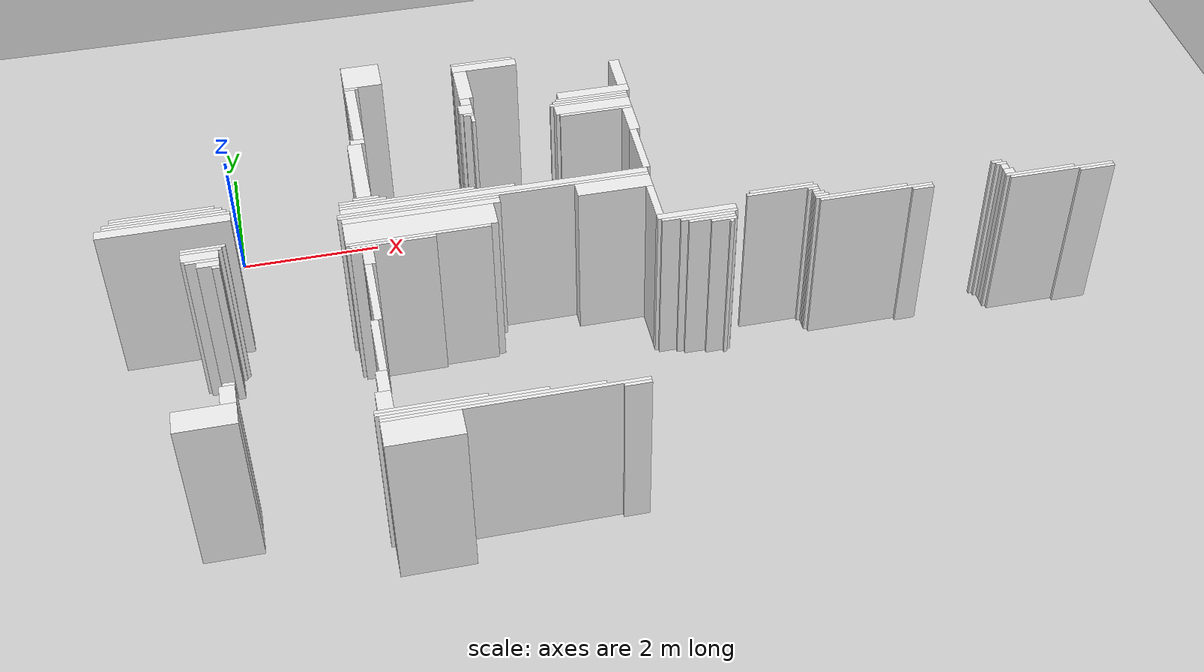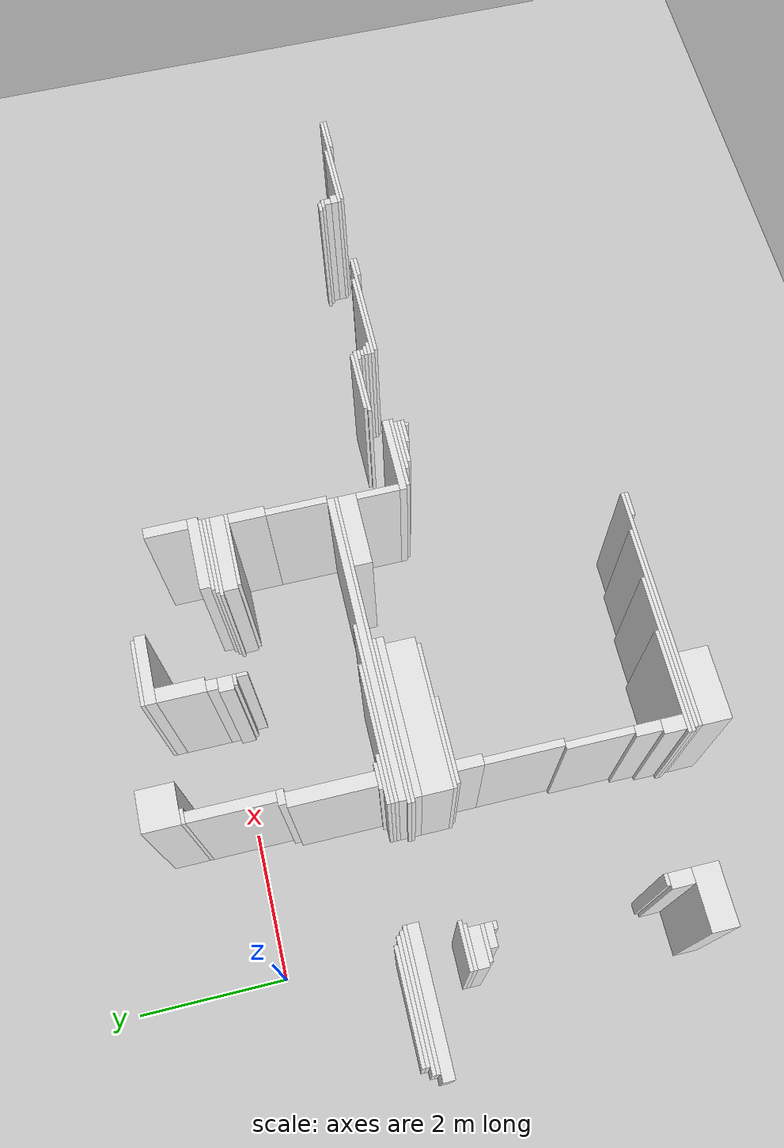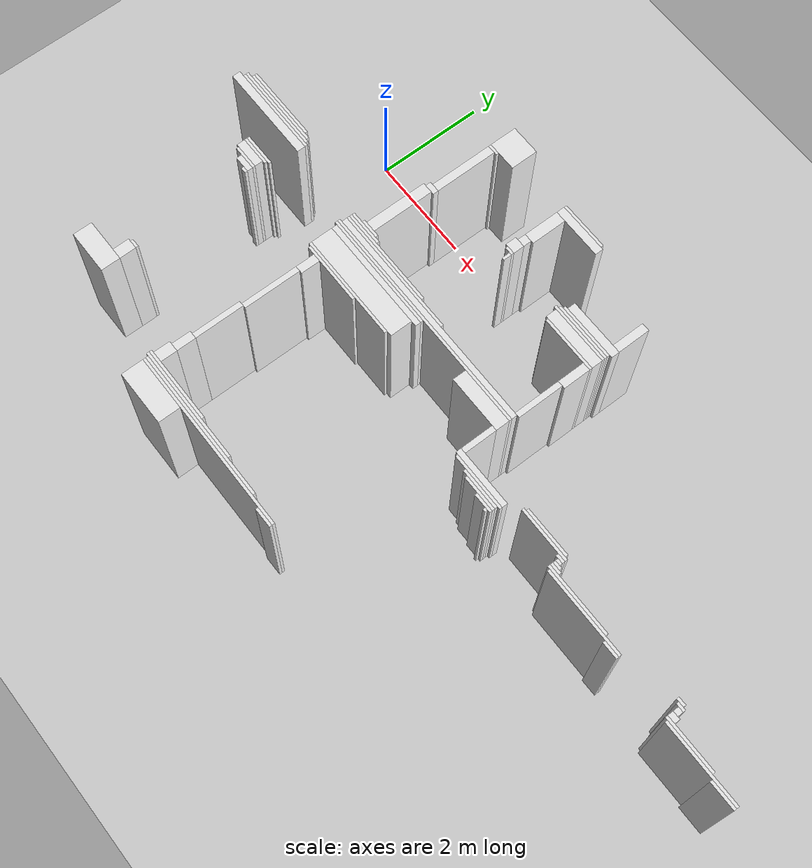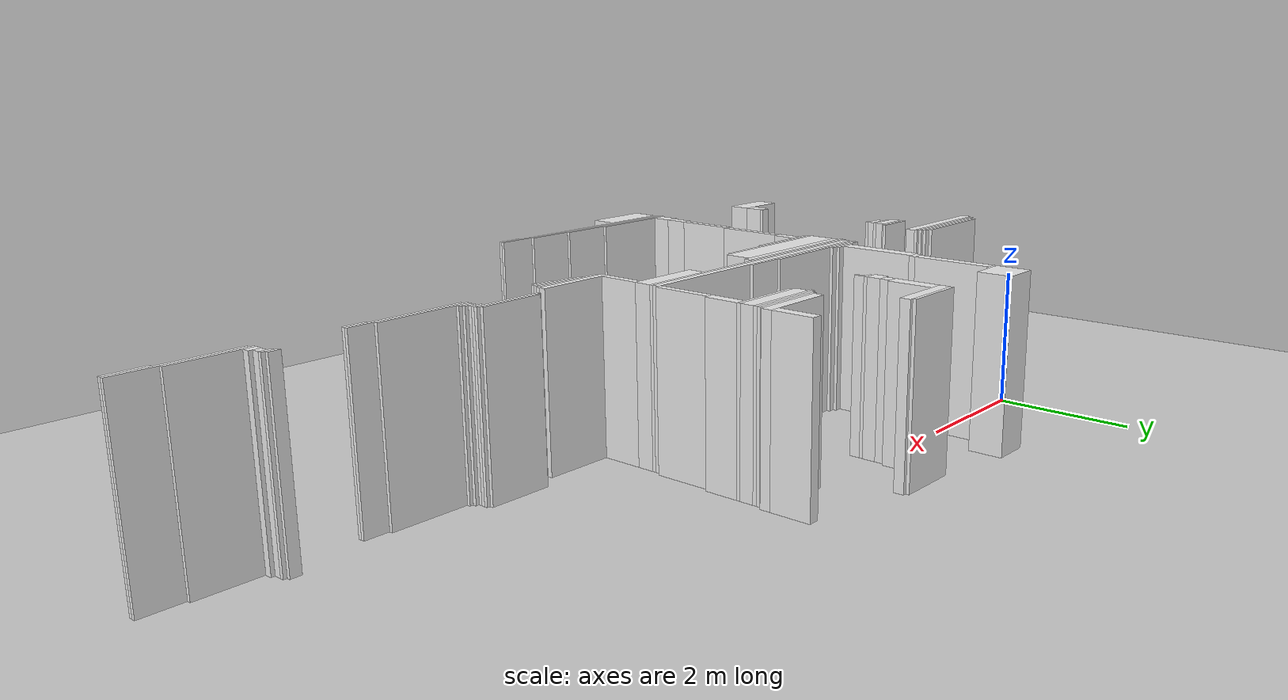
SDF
<sdf version="1.7">
 <world name="occupancy_map_world">
  <model name="ground_plane">
   <static>true</static>
   <link name="link">
    <collision name="collision">
     <geometry><plane><normal>0 0 1</normal><size>32.46 49.62000000000001</size></plane></geometry>
    </collision>
    <visual name="visual">
     <geometry><plane><normal>0 0 1</normal><size>32.46 49.62000000000001</size></plane></geometry>
     <material>
      <script><uri>file://media/materials/scripts/gazebo.material</uri><name>Gazebo/Grey</name></script>
     </material>
    </visual>
   </link>
  </model>
  <model name="wall_77">
   <static>true</static>
   <pose>10.575000000000003 -2.974999999999998 1.25 0 0 0.0</pose>
   <link name="link">
    <collision name="collision"><geometry><box><size>0.1 0.1 2.5</size></box></geometry></collision>
    <visual name="visual">
     <geometry><box><size>0.1 0.1 2.5</size></box></geometry>
     <material>
      <script><uri>file://media/materials/scripts/gazebo.material</uri><name>Gazebo/White</name></script>
     </material>
    </visual>
   </link>
  </model>
  <model name="wall_415">
   <static>true</static>
   <pose>3.5000000000000036 0.05000000000000071 1.25 0 0 0.0</pose>
   <link name="link">
    <collision name="collision">
     <geometry><box><size>0.15000000000000002 0.15000000000000002 2.5</size></box></geometry>
    </collision>
    <visual name="visual">
     <geometry><box><size>0.15000000000000002 0.15000000000000002 2.5</size></box></geometry>
     <material>
      <script><uri>file://media/materials/scripts/gazebo.material</uri><name>Gazebo/White</name></script>
     </material>
    </visual>
   </link>
  </model>
  <model name="wall_416">
   <static>true</static>
   <pose>3.5000000000000036 -0.25 1.25 0 0 0.0</pose>
   <link name="link">
    <collision name="collision">
     <geometry><box><size>0.15000000000000002 0.05 2.5</size></box></geometry>
    </collision>
    <visual name="visual">
     <geometry><box><size>0.15000000000000002 0.05 2.5</size></box></geometry>
     <material>
      <script><uri>file://media/materials/scripts/gazebo.material</uri><name>Gazebo/White</name></script>
     </material>
    </visual>
   </link>
  </model>
  <model name="wall_418">
   <static>true</static>
   <pose>2.1000000000000014 0.9750000000000014 1.25 0 0 0.0</pose>
   <link name="link">
    <collision name="collision"><geometry><box><size>0.55 0.5 2.5</size></box></geometry></collision>
    <visual name="visual">
     <geometry><box><size>0.55 0.5 2.5</size></box></geometry>
     <material>
      <script><uri>file://media/materials/scripts/gazebo.material</uri><name>Gazebo/White</name></script>
     </material>
    </visual>
   </link>
  </model>
  <model name="wall_424">
   <static>true</static>
   <pose>3.8750000000000036 0.9500000000000028 1.25 0 0 0.0</pose>
   <link name="link">
    <collision name="collision"><geometry><box><size>0.9 0.05 2.5</size></box></geometry></collision>
    <visual name="visual">
     <geometry><box><size>0.9 0.05 2.5</size></box></geometry>
     <material>
      <script><uri>file://media/materials/scripts/gazebo.material</uri><name>Gazebo/White</name></script>
     </material>
    </visual>
   </link>
  </model>
  <model name="wall_426">
   <static>true</static>
   <pose>3.900000000000002 0.8500000000000014 1.25 0 0 0.0</pose>
   <link name="link">
    <collision name="collision">
     <geometry><box><size>0.9500000000000001 0.15000000000000002 2.5</size></box></geometry>
    </collision>
    <visual name="visual">
     <geometry><box><size>0.9500000000000001 0.15000000000000002 2.5</size></box></geometry>
     <material>
      <script><uri>file://media/materials/scripts/gazebo.material</uri><name>Gazebo/White</name></script>
     </material>
    </visual>
   </link>
  </model>
  <model name="wall_430">
   <static>true</static>
   <pose>3.525000000000002 0.45000000000000284 1.25 0 0 0.0</pose>
   <link name="link">
    <collision name="collision"><geometry><box><size>0.2 0.65 2.5</size></box></geometry></collision>
    <visual name="visual">
     <geometry><box><size>0.2 0.65 2.5</size></box></geometry>
     <material>
      <script><uri>file://media/materials/scripts/gazebo.material</uri><name>Gazebo/White</name></script>
     </material>
    </visual>
   </link>
  </model>
  <model name="wall_432">
   <static>true</static>
   <pose>1.9250000000000043 0.7000000000000028 1.25 0 0 0.0</pose>
   <link name="link">
    <collision name="collision"><geometry><box><size>0.2 0.05 2.5</size></box></geometry></collision>
    <visual name="visual">
     <geometry><box><size>0.2 0.05 2.5</size></box></geometry>
     <material>
      <script><uri>file://media/materials/scripts/gazebo.material</uri><name>Gazebo/White</name></script>
     </material>
    </visual>
   </link>
  </model>
  <model name="wall_433">
   <static>true</static>
   <pose>1.9000000000000021 0.10000000000000142 1.25 0 0 0.0</pose>
   <link name="link">
    <collision name="collision">
     <geometry><box><size>0.15000000000000002 1.1500000000000001 2.5</size></box></geometry>
    </collision>
    <visual name="visual">
     <geometry><box><size>0.15000000000000002 1.1500000000000001 2.5</size></box></geometry>
     <material>
      <script><uri>file://media/materials/scripts/gazebo.material</uri><name>Gazebo/White</name></script>
     </material>
    </visual>
   </link>
  </model>
  <model name="wall_434">
   <static>true</static>
   <pose>5.800000000000004 0.27500000000000213 1.25 0 0 0.0</pose>
   <link name="link">
    <collision name="collision">
     <geometry><box><size>0.15000000000000002 0.6000000000000001 2.5</size></box></geometry>
    </collision>
    <visual name="visual">
     <geometry><box><size>0.15000000000000002 0.6000000000000001 2.5</size></box></geometry>
     <material>
      <script><uri>file://media/materials/scripts/gazebo.material</uri><name>Gazebo/White</name></script>
     </material>
    </visual>
   </link>
  </model>
  <model name="wall_437">
   <static>true</static>
   <pose>3.4750000000000014 -0.125 1.25 0 0 0.0</pose>
   <link name="link">
    <collision name="collision"><geometry><box><size>0.2 0.2 2.5</size></box></geometry></collision>
    <visual name="visual">
     <geometry><box><size>0.2 0.2 2.5</size></box></geometry>
     <material>
      <script><uri>file://media/materials/scripts/gazebo.material</uri><name>Gazebo/White</name></script>
     </material>
    </visual>
   </link>
  </model>
  <model name="wall_438">
   <static>true</static>
   <pose>5.350000000000001 -0.09999999999999787 1.25 0 0 0.0</pose>
   <link name="link">
    <collision name="collision">
     <geometry><box><size>1.05 0.15000000000000002 2.5</size></box></geometry>
    </collision>
    <visual name="visual">
     <geometry><box><size>1.05 0.15000000000000002 2.5</size></box></geometry>
     <material>
      <script><uri>file://media/materials/scripts/gazebo.material</uri><name>Gazebo/White</name></script>
     </material>
    </visual>
   </link>
  </model>
  <model name="wall_439">
   <static>true</static>
   <pose>5.300000000000004 -0.1999999999999993 1.25 0 0 0.0</pose>
   <link name="link">
    <collision name="collision"><geometry><box><size>1.05 0.05 2.5</size></box></geometry></collision>
    <visual name="visual">
     <geometry><box><size>1.05 0.05 2.5</size></box></geometry>
     <material>
      <script><uri>file://media/materials/scripts/gazebo.material</uri><name>Gazebo/White</name></script>
     </material>
    </visual>
   </link>
  </model>
  <model name="wall_440">
   <static>true</static>
   <pose>5.300000000000004 -0.5499999999999972 1.25 0 0 0.0</pose>
   <link name="link">
    <collision name="collision"><geometry><box><size>1.05 0.05 2.5</size></box></geometry></collision>
    <visual name="visual">
     <geometry><box><size>1.05 0.05 2.5</size></box></geometry>
     <material>
      <script><uri>file://media/materials/scripts/gazebo.material</uri><name>Gazebo/White</name></script>
     </material>
    </visual>
   </link>
  </model>
  <model name="wall_441">
   <static>true</static>
   <pose>5.275000000000002 -0.25 1.25 0 0 0.0</pose>
   <link name="link">
    <collision name="collision"><geometry><box><size>1.1 0.05 2.5</size></box></geometry></collision>
    <visual name="visual">
     <geometry><box><size>1.1 0.05 2.5</size></box></geometry>
     <material>
      <script><uri>file://media/materials/scripts/gazebo.material</uri><name>Gazebo/White</name></script>
     </material>
    </visual>
   </link>
  </model>
  <model name="wall_442">
   <static>true</static>
   <pose>5.275000000000002 -0.42499999999999716 1.25 0 0 0.0</pose>
   <link name="link">
    <collision name="collision"><geometry><box><size>1.1 0.2 2.5</size></box></geometry></collision>
    <visual name="visual">
     <geometry><box><size>1.1 0.2 2.5</size></box></geometry>
     <material>
      <script><uri>file://media/materials/scripts/gazebo.material</uri><name>Gazebo/White</name></script>
     </material>
    </visual>
   </link>
  </model>
  <model name="wall_444">
   <static>true</static>
   <pose>3.5500000000000043 -0.34999999999999787 1.25 0 0 0.0</pose>
   <link name="link">
    <collision name="collision">
     <geometry><box><size>0.05 0.15000000000000002 2.5</size></box></geometry>
    </collision>
    <visual name="visual">
     <geometry><box><size>0.05 0.15000000000000002 2.5</size></box></geometry>
     <material>
      <script><uri>file://media/materials/scripts/gazebo.material</uri><name>Gazebo/White</name></script>
     </material>
    </visual>
   </link>
  </model>
  <model name="wall_445">
   <static>true</static>
   <pose>5.2500000000000036 -0.29999999999999716 1.25 0 0 0.0</pose>
   <link name="link">
    <collision name="collision">
     <geometry><box><size>1.1500000000000001 0.05 2.5</size></box></geometry>
    </collision>
    <visual name="visual">
     <geometry><box><size>1.1500000000000001 0.05 2.5</size></box></geometry>
     <material>
      <script><uri>file://media/materials/scripts/gazebo.material</uri><name>Gazebo/White</name></script>
     </material>
    </visual>
   </link>
  </model>
  <model name="wall_450">
   <static>true</static>
   <pose>1.8750000000000036 -0.5249999999999986 1.25 0 0 0.0</pose>
   <link name="link">
    <collision name="collision"><geometry><box><size>0.2 0.1 2.5</size></box></geometry></collision>
    <visual name="visual">
     <geometry><box><size>0.2 0.1 2.5</size></box></geometry>
     <material>
      <script><uri>file://media/materials/scripts/gazebo.material</uri><name>Gazebo/White</name></script>
     </material>
    </visual>
   </link>
  </model>
  <model name="wall_451">
   <static>true</static>
   <pose>1.8250000000000028 -1.1499999999999986 1.25 0 0 0.0</pose>
   <link name="link">
    <collision name="collision">
     <geometry><box><size>0.2 1.1500000000000001 2.5</size></box></geometry>
    </collision>
    <visual name="visual">
     <geometry><box><size>0.2 1.1500000000000001 2.5</size></box></geometry>
     <material>
      <script><uri>file://media/materials/scripts/gazebo.material</uri><name>Gazebo/White</name></script>
     </material>
    </visual>
   </link>
  </model>
  <model name="wall_452">
   <static>true</static>
   <pose>5.7500000000000036 -0.8249999999999993 1.25 0 0 0.0</pose>
   <link name="link">
    <collision name="collision">
     <geometry><box><size>0.15000000000000002 0.5 2.5</size></box></geometry>
    </collision>
    <visual name="visual">
     <geometry><box><size>0.15000000000000002 0.5 2.5</size></box></geometry>
     <material>
      <script><uri>file://media/materials/scripts/gazebo.material</uri><name>Gazebo/White</name></script>
     </material>
    </visual>
   </link>
  </model>
  <model name="wall_455">
   <static>true</static>
   <pose>5.725000000000001 -1.5 1.25 0 0 0.0</pose>
   <link name="link">
    <collision name="collision">
     <geometry><box><size>0.1 0.8500000000000001 2.5</size></box></geometry>
    </collision>
    <visual name="visual">
     <geometry><box><size>0.1 0.8500000000000001 2.5</size></box></geometry>
     <material>
      <script><uri>file://media/materials/scripts/gazebo.material</uri><name>Gazebo/White</name></script>
     </material>
    </visual>
   </link>
  </model>
  <model name="wall_458">
   <static>true</static>
   <pose>-0.8749999999999964 -1.5 1.25 0 0 0.0</pose>
   <link name="link">
    <collision name="collision">
     <geometry><box><size>1.4000000000000001 0.05 2.5</size></box></geometry>
    </collision>
    <visual name="visual">
     <geometry><box><size>1.4000000000000001 0.05 2.5</size></box></geometry>
     <material>
      <script><uri>file://media/materials/scripts/gazebo.material</uri><name>Gazebo/White</name></script>
     </material>
    </visual>
   </link>
  </model>
  <model name="wall_459">
   <static>true</static>
   <pose>-0.8249999999999993 -1.5499999999999972 1.25 0 0 0.0</pose>
   <link name="link">
    <collision name="collision"><geometry><box><size>1.5 0.05 2.5</size></box></geometry></collision>
    <visual name="visual">
     <geometry><box><size>1.5 0.05 2.5</size></box></geometry>
     <material>
      <script><uri>file://media/materials/scripts/gazebo.material</uri><name>Gazebo/White</name></script>
     </material>
    </visual>
   </link>
  </model>
  <model name="wall_460">
   <static>true</static>
   <pose>-0.8499999999999979 -1.5999999999999979 1.25 0 0 0.0</pose>
   <link name="link">
    <collision name="collision">
     <geometry><box><size>1.6500000000000001 0.05 2.5</size></box></geometry>
    </collision>
    <visual name="visual">
     <geometry><box><size>1.6500000000000001 0.05 2.5</size></box></geometry>
     <material>
      <script><uri>file://media/materials/scripts/gazebo.material</uri><name>Gazebo/White</name></script>
     </material>
    </visual>
   </link>
  </model>
  <model name="wall_461">
   <static>true</static>
   <pose>-0.8249999999999993 -1.6499999999999986 1.25 0 0 0.0</pose>
   <link name="link">
    <collision name="collision">
     <geometry><box><size>1.7000000000000002 0.05 2.5</size></box></geometry>
    </collision>
    <visual name="visual">
     <geometry><box><size>1.7000000000000002 0.05 2.5</size></box></geometry>
     <material>
      <script><uri>file://media/materials/scripts/gazebo.material</uri><name>Gazebo/White</name></script>
     </material>
    </visual>
   </link>
  </model>
  <model name="wall_462">
   <static>true</static>
   <pose>-0.8749999999999964 -1.75 1.25 0 0 0.0</pose>
   <link name="link">
    <collision name="collision">
     <geometry><box><size>1.8 0.15000000000000002 2.5</size></box></geometry>
    </collision>
    <visual name="visual">
     <geometry><box><size>1.8 0.15000000000000002 2.5</size></box></geometry>
     <material>
      <script><uri>file://media/materials/scripts/gazebo.material</uri><name>Gazebo/White</name></script>
     </material>
    </visual>
   </link>
  </model>
  <model name="wall_463">
   <static>true</static>
   <pose>1.8500000000000014 -1.75 1.25 0 0 0.0</pose>
   <link name="link">
    <collision name="collision">
     <geometry><box><size>0.35000000000000003 0.05 2.5</size></box></geometry>
    </collision>
    <visual name="visual">
     <geometry><box><size>0.35000000000000003 0.05 2.5</size></box></geometry>
     <material>
      <script><uri>file://media/materials/scripts/gazebo.material</uri><name>Gazebo/White</name></script>
     </material>
    </visual>
   </link>
  </model>
  <model name="wall_464">
   <static>true</static>
   <pose>1.8000000000000043 -1.7999999999999972 1.25 0 0 0.0</pose>
   <link name="link">
    <collision name="collision"><geometry><box><size>0.65 0.05 2.5</size></box></geometry></collision>
    <visual name="visual">
     <geometry><box><size>0.65 0.05 2.5</size></box></geometry>
     <material>
      <script><uri>file://media/materials/scripts/gazebo.material</uri><name>Gazebo/White</name></script>
     </material>
    </visual>
   </link>
  </model>
  <model name="wall_466">
   <static>true</static>
   <pose>2.400000000000002 -1.8499999999999979 1.25 0 0 0.0</pose>
   <link name="link">
    <collision name="collision"><geometry><box><size>1.85 0.05 2.5</size></box></geometry></collision>
    <visual name="visual">
     <geometry><box><size>1.85 0.05 2.5</size></box></geometry>
     <material>
      <script><uri>file://media/materials/scripts/gazebo.material</uri><name>Gazebo/White</name></script>
     </material>
    </visual>
   </link>
  </model>
  <model name="wall_467">
   <static>true</static>
   <pose>2.6750000000000043 -1.8999999999999986 1.25 0 0 0.0</pose>
   <link name="link">
    <collision name="collision">
     <geometry><box><size>2.4000000000000004 0.05 2.5</size></box></geometry>
    </collision>
    <visual name="visual">
     <geometry><box><size>2.4000000000000004 0.05 2.5</size></box></geometry>
     <material>
      <script><uri>file://media/materials/scripts/gazebo.material</uri><name>Gazebo/White</name></script>
     </material>
    </visual>
   </link>
  </model>
  <model name="wall_468">
   <static>true</static>
   <pose>3.6000000000000014 -1.9749999999999979 1.25 0 0 0.0</pose>
   <link name="link">
    <collision name="collision"><geometry><box><size>4.25 0.1 2.5</size></box></geometry></collision>
    <visual name="visual">
     <geometry><box><size>4.25 0.1 2.5</size></box></geometry>
     <material>
      <script><uri>file://media/materials/scripts/gazebo.material</uri><name>Gazebo/White</name></script>
     </material>
    </visual>
   </link>
  </model>
  <model name="wall_469">
   <static>true</static>
   <pose>3.575000000000003 -2.0500000000000007 1.25 0 0 0.0</pose>
   <link name="link">
    <collision name="collision"><geometry><box><size>4.3 0.05 2.5</size></box></geometry></collision>
    <visual name="visual">
     <geometry><box><size>4.3 0.05 2.5</size></box></geometry>
     <material>
      <script><uri>file://media/materials/scripts/gazebo.material</uri><name>Gazebo/White</name></script>
     </material>
    </visual>
   </link>
  </model>
  <model name="wall_471">
   <static>true</static>
   <pose>2.525000000000002 -2.099999999999998 1.25 0 0 0.0</pose>
   <link name="link">
    <collision name="collision"><geometry><box><size>2.2 0.05 2.5</size></box></geometry></collision>
    <visual name="visual">
     <geometry><box><size>2.2 0.05 2.5</size></box></geometry>
     <material>
      <script><uri>file://media/materials/scripts/gazebo.material</uri><name>Gazebo/White</name></script>
     </material>
    </visual>
   </link>
  </model>
  <model name="wall_472">
   <static>true</static>
   <pose>5.200000000000003 -2.1999999999999993 1.25 0 0 0.0</pose>
   <link name="link">
    <collision name="collision"><geometry><box><size>1.05 0.25 2.5</size></box></geometry></collision>
    <visual name="visual">
     <geometry><box><size>1.05 0.25 2.5</size></box></geometry>
     <material>
      <script><uri>file://media/materials/scripts/gazebo.material</uri><name>Gazebo/White</name></script>
     </material>
    </visual>
   </link>
  </model>
  <model name="wall_474">
   <static>true</static>
   <pose>2.5500000000000043 -2.1750000000000007 1.25 0 0 0.0</pose>
   <link name="link">
    <collision name="collision"><geometry><box><size>2.15 0.1 2.5</size></box></geometry></collision>
    <visual name="visual">
     <geometry><box><size>2.15 0.1 2.5</size></box></geometry>
     <material>
      <script><uri>file://media/materials/scripts/gazebo.material</uri><name>Gazebo/White</name></script>
     </material>
    </visual>
   </link>
  </model>
  <model name="wall_475">
   <static>true</static>
   <pose>2.5500000000000043 -5.75 1.25 0 0 0.0</pose>
   <link name="link">
    <collision name="collision"><geometry><box><size>2.15 0.05 2.5</size></box></geometry></collision>
    <visual name="visual">
     <geometry><box><size>2.15 0.05 2.5</size></box></geometry>
     <material>
      <script><uri>file://media/materials/scripts/gazebo.material</uri><name>Gazebo/White</name></script>
     </material>
    </visual>
   </link>
  </model>
  <model name="wall_479">
   <static>true</static>
   <pose>2.5000000000000036 -2.4250000000000007 1.25 0 0 0.0</pose>
   <link name="link">
    <collision name="collision">
     <geometry><box><size>2.0500000000000003 0.4 2.5</size></box></geometry>
    </collision>
    <visual name="visual">
     <geometry><box><size>2.0500000000000003 0.4 2.5</size></box></geometry>
     <material>
      <script><uri>file://media/materials/scripts/gazebo.material</uri><name>Gazebo/White</name></script>
     </material>
    </visual>
   </link>
  </model>
  <model name="wall_484">
   <static>true</static>
   <pose>-0.37499999999999645 -2.3000000000000007 1.25 0 0 0.0</pose>
   <link name="link">
    <collision name="collision">
     <geometry><box><size>0.6000000000000001 0.05 2.5</size></box></geometry>
    </collision>
    <visual name="visual">
     <geometry><box><size>0.6000000000000001 0.05 2.5</size></box></geometry>
     <material>
      <script><uri>file://media/materials/scripts/gazebo.material</uri><name>Gazebo/White</name></script>
     </material>
    </visual>
   </link>
  </model>
  <model name="wall_486">
   <static>true</static>
   <pose>-0.3999999999999986 -2.349999999999998 1.25 0 0 0.0</pose>
   <link name="link">
    <collision name="collision"><geometry><box><size>0.55 0.05 2.5</size></box></geometry></collision>
    <visual name="visual">
     <geometry><box><size>0.55 0.05 2.5</size></box></geometry>
     <material>
      <script><uri>file://media/materials/scripts/gazebo.material</uri><name>Gazebo/White</name></script>
     </material>
    </visual>
   </link>
  </model>
  <model name="wall_488">
   <static>true</static>
   <pose>5.675000000000004 -2.625 1.25 0 0 0.0</pose>
   <link name="link">
    <collision name="collision">
     <geometry><box><size>0.1 0.6000000000000001 2.5</size></box></geometry>
    </collision>
    <visual name="visual">
     <geometry><box><size>0.1 0.6000000000000001 2.5</size></box></geometry>
     <material>
      <script><uri>file://media/materials/scripts/gazebo.material</uri><name>Gazebo/White</name></script>
     </material>
    </visual>
   </link>
  </model>
  <model name="wall_489">
   <static>true</static>
   <pose>-0.42499999999999716 -2.4499999999999993 1.25 0 0 0.0</pose>
   <link name="link">
    <collision name="collision">
     <geometry><box><size>0.5 0.15000000000000002 2.5</size></box></geometry>
    </collision>
    <visual name="visual">
     <geometry><box><size>0.5 0.15000000000000002 2.5</size></box></geometry>
     <material>
      <script><uri>file://media/materials/scripts/gazebo.material</uri><name>Gazebo/White</name></script>
     </material>
    </visual>
   </link>
  </model>
  <model name="wall_492">
   <static>true</static>
   <pose>-0.3999999999999986 -2.5500000000000007 1.25 0 0 0.0</pose>
   <link name="link">
    <collision name="collision"><geometry><box><size>0.45 0.05 2.5</size></box></geometry></collision>
    <visual name="visual">
     <geometry><box><size>0.45 0.05 2.5</size></box></geometry>
     <material>
      <script><uri>file://media/materials/scripts/gazebo.material</uri><name>Gazebo/White</name></script>
     </material>
    </visual>
   </link>
  </model>
  <model name="wall_494">
   <static>true</static>
   <pose>-0.3249999999999993 -2.625 1.25 0 0 0.0</pose>
   <link name="link">
    <collision name="collision">
     <geometry><box><size>0.30000000000000004 0.1 2.5</size></box></geometry>
    </collision>
    <visual name="visual">
     <geometry><box><size>0.30000000000000004 0.1 2.5</size></box></geometry>
     <material>
      <script><uri>file://media/materials/scripts/gazebo.material</uri><name>Gazebo/White</name></script>
     </material>
    </visual>
   </link>
  </model>
  <model name="wall_495">
   <static>true</static>
   <pose>2.450000000000003 -2.6499999999999986 1.25 0 0 0.0</pose>
   <link name="link">
    <collision name="collision">
     <geometry><box><size>1.9500000000000002 0.05 2.5</size></box></geometry>
    </collision>
    <visual name="visual">
     <geometry><box><size>1.9500000000000002 0.05 2.5</size></box></geometry>
     <material>
      <script><uri>file://media/materials/scripts/gazebo.material</uri><name>Gazebo/White</name></script>
     </material>
    </visual>
   </link>
  </model>
  <model name="wall_496">
   <static>true</static>
   <pose>-0.22499999999999787 -2.6999999999999993 1.25 0 0 0.0</pose>
   <link name="link">
    <collision name="collision"><geometry><box><size>0.1 0.05 2.5</size></box></geometry></collision>
    <visual name="visual">
     <geometry><box><size>0.1 0.05 2.5</size></box></geometry>
     <material>
      <script><uri>file://media/materials/scripts/gazebo.material</uri><name>Gazebo/White</name></script>
     </material>
    </visual>
   </link>
  </model>
  <model name="wall_498">
   <static>true</static>
   <pose>2.1000000000000014 -2.6999999999999993 1.25 0 0 0.0</pose>
   <link name="link">
    <collision name="collision">
     <geometry><box><size>1.1500000000000001 0.05 2.5</size></box></geometry>
    </collision>
    <visual name="visual">
     <geometry><box><size>1.1500000000000001 0.05 2.5</size></box></geometry>
     <material>
      <script><uri>file://media/materials/scripts/gazebo.material</uri><name>Gazebo/White</name></script>
     </material>
    </visual>
   </link>
  </model>
  <model name="wall_500">
   <static>true</static>
   <pose>1.7500000000000036 -2.8999999999999986 1.25 0 0 0.0</pose>
   <link name="link">
    <collision name="collision">
     <geometry><box><size>0.15000000000000002 0.35000000000000003 2.5</size></box></geometry>
    </collision>
    <visual name="visual">
     <geometry><box><size>0.15000000000000002 0.35000000000000003 2.5</size></box></geometry>
     <material>
      <script><uri>file://media/materials/scripts/gazebo.material</uri><name>Gazebo/White</name></script>
     </material>
    </visual>
   </link>
  </model>
  <model name="wall_501">
   <static>true</static>
   <pose>7.425000000000004 -2.75 1.25 0 0 0.0</pose>
   <link name="link">
    <collision name="collision"><geometry><box><size>0.9 0.05 2.5</size></box></geometry></collision>
    <visual name="visual">
     <geometry><box><size>0.9 0.05 2.5</size></box></geometry>
     <material>
      <script><uri>file://media/materials/scripts/gazebo.material</uri><name>Gazebo/White</name></script>
     </material>
    </visual>
   </link>
  </model>
  <model name="wall_503">
   <static>true</static>
   <pose>7.425000000000004 -2.8000000000000007 1.25 0 0 0.0</pose>
   <link name="link">
    <collision name="collision"><geometry><box><size>1.0 0.05 2.5</size></box></geometry></collision>
    <visual name="visual">
     <geometry><box><size>1.0 0.05 2.5</size></box></geometry>
     <material>
      <script><uri>file://media/materials/scripts/gazebo.material</uri><name>Gazebo/White</name></script>
     </material>
    </visual>
   </link>
  </model>
  <model name="wall_505">
   <static>true</static>
   <pose>7.850000000000001 -2.849999999999998 1.25 0 0 0.0</pose>
   <link name="link">
    <collision name="collision">
     <geometry><box><size>0.15000000000000002 0.05 2.5</size></box></geometry>
    </collision>
    <visual name="visual">
     <geometry><box><size>0.15000000000000002 0.05 2.5</size></box></geometry>
     <material>
      <script><uri>file://media/materials/scripts/gazebo.material</uri><name>Gazebo/White</name></script>
     </material>
    </visual>
   </link>
  </model>
  <model name="wall_506">
   <static>true</static>
   <pose>10.500000000000004 -2.849999999999998 1.25 0 0 0.0</pose>
   <link name="link">
    <collision name="collision">
     <geometry><box><size>0.15000000000000002 0.05 2.5</size></box></geometry>
    </collision>
    <visual name="visual">
     <geometry><box><size>0.15000000000000002 0.05 2.5</size></box></geometry>
     <material>
      <script><uri>file://media/materials/scripts/gazebo.material</uri><name>Gazebo/White</name></script>
     </material>
    </visual>
   </link>
  </model>
  <model name="wall_507">
   <static>true</static>
   <pose>7.8750000000000036 -2.8999999999999986 1.25 0 0 0.0</pose>
   <link name="link">
    <collision name="collision"><geometry><box><size>0.1 0.05 2.5</size></box></geometry></collision>
    <visual name="visual">
     <geometry><box><size>0.1 0.05 2.5</size></box></geometry>
     <material>
      <script><uri>file://media/materials/scripts/gazebo.material</uri><name>Gazebo/White</name></script>
     </material>
    </visual>
   </link>
  </model>
  <model name="wall_508">
   <static>true</static>
   <pose>10.550000000000004 -2.8999999999999986 1.25 0 0 0.0</pose>
   <link name="link">
    <collision name="collision">
     <geometry><box><size>0.15000000000000002 0.05 2.5</size></box></geometry>
    </collision>
    <visual name="visual">
     <geometry><box><size>0.15000000000000002 0.05 2.5</size></box></geometry>
     <material>
      <script><uri>file://media/materials/scripts/gazebo.material</uri><name>Gazebo/White</name></script>
     </material>
    </visual>
   </link>
  </model>
  <model name="wall_509">
   <static>true</static>
   <pose>6.175000000000004 -2.974999999999998 1.25 0 0 0.0</pose>
   <link name="link">
    <collision name="collision"><geometry><box><size>1.1 0.1 2.5</size></box></geometry></collision>
    <visual name="visual">
     <geometry><box><size>1.1 0.1 2.5</size></box></geometry>
     <material>
      <script><uri>file://media/materials/scripts/gazebo.material</uri><name>Gazebo/White</name></script>
     </material>
    </visual>
   </link>
  </model>
  <model name="wall_510">
   <static>true</static>
   <pose>7.900000000000002 -2.9499999999999993 1.25 0 0 0.0</pose>
   <link name="link">
    <collision name="collision">
     <geometry><box><size>0.15000000000000002 0.05 2.5</size></box></geometry>
    </collision>
    <visual name="visual">
     <geometry><box><size>0.15000000000000002 0.05 2.5</size></box></geometry>
     <material>
      <script><uri>file://media/materials/scripts/gazebo.material</uri><name>Gazebo/White</name></script>
     </material>
    </visual>
   </link>
  </model>
  <model name="wall_511">
   <static>true</static>
   <pose>7.925000000000004 -3.0 1.25 0 0 0.0</pose>
   <link name="link">
    <collision name="collision"><geometry><box><size>0.2 0.05 2.5</size></box></geometry></collision>
    <visual name="visual">
     <geometry><box><size>0.2 0.05 2.5</size></box></geometry>
     <material>
      <script><uri>file://media/materials/scripts/gazebo.material</uri><name>Gazebo/White</name></script>
     </material>
    </visual>
   </link>
  </model>
  <model name="wall_513">
   <static>true</static>
   <pose>6.200000000000003 -3.0500000000000007 1.25 0 0 0.0</pose>
   <link name="link">
    <collision name="collision"><geometry><box><size>1.05 0.05 2.5</size></box></geometry></collision>
    <visual name="visual">
     <geometry><box><size>1.05 0.05 2.5</size></box></geometry>
     <material>
      <script><uri>file://media/materials/scripts/gazebo.material</uri><name>Gazebo/White</name></script>
     </material>
    </visual>
   </link>
  </model>
  <model name="wall_514">
   <static>true</static>
   <pose>8.475000000000001 -3.0500000000000007 1.25 0 0 0.0</pose>
   <link name="link">
    <collision name="collision"><geometry><box><size>1.3 0.05 2.5</size></box></geometry></collision>
    <visual name="visual">
     <geometry><box><size>1.3 0.05 2.5</size></box></geometry>
     <material>
      <script><uri>file://media/materials/scripts/gazebo.material</uri><name>Gazebo/White</name></script>
     </material>
    </visual>
   </link>
  </model>
  <model name="wall_515">
   <static>true</static>
   <pose>10.600000000000001 -3.0749999999999993 1.25 0 0 0.0</pose>
   <link name="link">
    <collision name="collision">
     <geometry><box><size>0.15000000000000002 0.1 2.5</size></box></geometry>
    </collision>
    <visual name="visual">
     <geometry><box><size>0.15000000000000002 0.1 2.5</size></box></geometry>
     <material>
      <script><uri>file://media/materials/scripts/gazebo.material</uri><name>Gazebo/White</name></script>
     </material>
    </visual>
   </link>
  </model>
  <model name="wall_516">
   <static>true</static>
   <pose>1.7250000000000014 -3.599999999999998 1.25 0 0 0.0</pose>
   <link name="link">
    <collision name="collision"><geometry><box><size>0.1 1.05 2.5</size></box></geometry></collision>
    <visual name="visual">
     <geometry><box><size>0.1 1.05 2.5</size></box></geometry>
     <material>
      <script><uri>file://media/materials/scripts/gazebo.material</uri><name>Gazebo/White</name></script>
     </material>
    </visual>
   </link>
  </model>
  <model name="wall_517">
   <static>true</static>
   <pose>6.300000000000004 -3.099999999999998 1.25 0 0 0.0</pose>
   <link name="link">
    <collision name="collision"><geometry><box><size>0.75 0.05 2.5</size></box></geometry></collision>
    <visual name="visual">
     <geometry><box><size>0.75 0.05 2.5</size></box></geometry>
     <material>
      <script><uri>file://media/materials/scripts/gazebo.material</uri><name>Gazebo/White</name></script>
     </material>
    </visual>
   </link>
  </model>
  <model name="wall_518">
   <static>true</static>
   <pose>8.675000000000004 -3.099999999999998 1.25 0 0 0.0</pose>
   <link name="link">
    <collision name="collision"><geometry><box><size>1.6 0.05 2.5</size></box></geometry></collision>
    <visual name="visual">
     <geometry><box><size>1.6 0.05 2.5</size></box></geometry>
     <material>
      <script><uri>file://media/materials/scripts/gazebo.material</uri><name>Gazebo/White</name></script>
     </material>
    </visual>
   </link>
  </model>
  <model name="wall_519">
   <static>true</static>
   <pose>6.350000000000001 -3.1499999999999986 1.25 0 0 0.0</pose>
   <link name="link">
    <collision name="collision"><geometry><box><size>0.65 0.05 2.5</size></box></geometry></collision>
    <visual name="visual">
     <geometry><box><size>0.65 0.05 2.5</size></box></geometry>
     <material>
      <script><uri>file://media/materials/scripts/gazebo.material</uri><name>Gazebo/White</name></script>
     </material>
    </visual>
   </link>
  </model>
  <model name="wall_520">
   <static>true</static>
   <pose>9.325000000000003 -3.1499999999999986 1.25 0 0 0.0</pose>
   <link name="link">
    <collision name="collision">
     <geometry><box><size>0.30000000000000004 0.05 2.5</size></box></geometry>
    </collision>
    <visual name="visual">
     <geometry><box><size>0.30000000000000004 0.05 2.5</size></box></geometry>
     <material>
      <script><uri>file://media/materials/scripts/gazebo.material</uri><name>Gazebo/White</name></script>
     </material>
    </visual>
   </link>
  </model>
  <model name="wall_521">
   <static>true</static>
   <pose>11.025000000000002 -3.1499999999999986 1.25 0 0 0.0</pose>
   <link name="link">
    <collision name="collision"><geometry><box><size>1.0 0.05 2.5</size></box></geometry></collision>
    <visual name="visual">
     <geometry><box><size>1.0 0.05 2.5</size></box></geometry>
     <material>
      <script><uri>file://media/materials/scripts/gazebo.material</uri><name>Gazebo/White</name></script>
     </material>
    </visual>
   </link>
  </model>
  <model name="wall_522">
   <static>true</static>
   <pose>6.5000000000000036 -3.1999999999999993 1.25 0 0 0.0</pose>
   <link name="link">
    <collision name="collision">
     <geometry><box><size>0.35000000000000003 0.05 2.5</size></box></geometry>
    </collision>
    <visual name="visual">
     <geometry><box><size>0.35000000000000003 0.05 2.5</size></box></geometry>
     <material>
      <script><uri>file://media/materials/scripts/gazebo.material</uri><name>Gazebo/White</name></script>
     </material>
    </visual>
   </link>
  </model>
  <model name="wall_523">
   <static>true</static>
   <pose>11.325000000000003 -3.1999999999999993 1.25 0 0 0.0</pose>
   <link name="link">
    <collision name="collision"><geometry><box><size>1.5 0.05 2.5</size></box></geometry></collision>
    <visual name="visual">
     <geometry><box><size>1.5 0.05 2.5</size></box></geometry>
     <material>
      <script><uri>file://media/materials/scripts/gazebo.material</uri><name>Gazebo/White</name></script>
     </material>
    </visual>
   </link>
  </model>
  <model name="wall_525">
   <static>true</static>
   <pose>6.600000000000001 -3.25 1.25 0 0 0.0</pose>
   <link name="link">
    <collision name="collision"><geometry><box><size>0.05 0.05 2.5</size></box></geometry></collision>
    <visual name="visual">
     <geometry><box><size>0.05 0.05 2.5</size></box></geometry>
     <material>
      <script><uri>file://media/materials/scripts/gazebo.material</uri><name>Gazebo/White</name></script>
     </material>
    </visual>
   </link>
  </model>
  <model name="wall_526">
   <static>true</static>
   <pose>11.825000000000003 -3.25 1.25 0 0 0.0</pose>
   <link name="link">
    <collision name="collision"><geometry><box><size>0.5 0.05 2.5</size></box></geometry></collision>
    <visual name="visual">
     <geometry><box><size>0.5 0.05 2.5</size></box></geometry>
     <material>
      <script><uri>file://media/materials/scripts/gazebo.material</uri><name>Gazebo/White</name></script>
     </material>
    </visual>
   </link>
  </model>
  <model name="wall_528">
   <static>true</static>
   <pose>1.6750000000000043 -4.574999999999999 1.25 0 0 0.0</pose>
   <link name="link">
    <collision name="collision"><geometry><box><size>0.1 0.9 2.5</size></box></geometry></collision>
    <visual name="visual">
     <geometry><box><size>0.1 0.9 2.5</size></box></geometry>
     <material>
      <script><uri>file://media/materials/scripts/gazebo.material</uri><name>Gazebo/White</name></script>
     </material>
    </visual>
   </link>
  </model>
  <model name="wall_530">
   <static>true</static>
   <pose>-0.1999999999999993 -4.849999999999998 1.25 0 0 0.0</pose>
   <link name="link">
    <collision name="collision">
     <geometry><box><size>0.15000000000000002 0.05 2.5</size></box></geometry>
    </collision>
    <visual name="visual">
     <geometry><box><size>0.15000000000000002 0.05 2.5</size></box></geometry>
     <material>
      <script><uri>file://media/materials/scripts/gazebo.material</uri><name>Gazebo/White</name></script>
     </material>
    </visual>
   </link>
  </model>
  <model name="wall_531">
   <static>true</static>
   <pose>-0.22499999999999787 -5.024999999999999 1.25 0 0 0.0</pose>
   <link name="link">
    <collision name="collision">
     <geometry><box><size>0.2 0.30000000000000004 2.5</size></box></geometry>
    </collision>
    <visual name="visual">
     <geometry><box><size>0.2 0.30000000000000004 2.5</size></box></geometry>
     <material>
      <script><uri>file://media/materials/scripts/gazebo.material</uri><name>Gazebo/White</name></script>
     </material>
    </visual>
   </link>
  </model>
  <model name="wall_532">
   <static>true</static>
   <pose>1.6500000000000021 -5.199999999999999 1.25 0 0 0.0</pose>
   <link name="link">
    <collision name="collision">
     <geometry><box><size>0.15000000000000002 0.35000000000000003 2.5</size></box></geometry>
    </collision>
    <visual name="visual">
     <geometry><box><size>0.15000000000000002 0.35000000000000003 2.5</size></box></geometry>
     <material>
      <script><uri>file://media/materials/scripts/gazebo.material</uri><name>Gazebo/White</name></script>
     </material>
    </visual>
   </link>
  </model>
  <model name="wall_533">
   <static>true</static>
   <pose>-0.5249999999999986 -5.35 1.25 0 0 0.0</pose>
   <link name="link">
    <collision name="collision">
     <geometry><box><size>0.8 0.35000000000000003 2.5</size></box></geometry>
    </collision>
    <visual name="visual">
     <geometry><box><size>0.8 0.35000000000000003 2.5</size></box></geometry>
     <material>
      <script><uri>file://media/materials/scripts/gazebo.material</uri><name>Gazebo/White</name></script>
     </material>
    </visual>
   </link>
  </model>
  <model name="wall_534">
   <static>true</static>
   <pose>1.6250000000000036 -5.524999999999999 1.25 0 0 0.0</pose>
   <link name="link">
    <collision name="collision">
     <geometry><box><size>0.2 0.30000000000000004 2.5</size></box></geometry>
    </collision>
    <visual name="visual">
     <geometry><box><size>0.2 0.30000000000000004 2.5</size></box></geometry>
     <material>
      <script><uri>file://media/materials/scripts/gazebo.material</uri><name>Gazebo/White</name></script>
     </material>
    </visual>
   </link>
  </model>
  <model name="wall_541">
   <static>true</static>
   <pose>2.1750000000000043 -5.699999999999999 1.25 0 0 0.0</pose>
   <link name="link">
    <collision name="collision">
     <geometry><box><size>1.4000000000000001 0.05 2.5</size></box></geometry>
    </collision>
    <visual name="visual">
     <geometry><box><size>1.4000000000000001 0.05 2.5</size></box></geometry>
     <material>
      <script><uri>file://media/materials/scripts/gazebo.material</uri><name>Gazebo/White</name></script>
     </material>
    </visual>
   </link>
  </model>
  <model name="wall_543">
   <static>true</static>
   <pose>2.9250000000000043 -5.799999999999999 1.25 0 0 0.0</pose>
   <link name="link">
    <collision name="collision">
     <geometry><box><size>2.8000000000000003 0.05 2.5</size></box></geometry>
    </collision>
    <visual name="visual">
     <geometry><box><size>2.8000000000000003 0.05 2.5</size></box></geometry>
     <material>
      <script><uri>file://media/materials/scripts/gazebo.material</uri><name>Gazebo/White</name></script>
     </material>
    </visual>
   </link>
  </model>
  <model name="wall_544">
   <static>true</static>
   <pose>3.200000000000003 -5.85 1.25 0 0 0.0</pose>
   <link name="link">
    <collision name="collision"><geometry><box><size>3.35 0.05 2.5</size></box></geometry></collision>
    <visual name="visual">
     <geometry><box><size>3.35 0.05 2.5</size></box></geometry>
     <material>
      <script><uri>file://media/materials/scripts/gazebo.material</uri><name>Gazebo/White</name></script>
     </material>
    </visual>
   </link>
  </model>
  <model name="wall_548">
   <static>true</static>
   <pose>2.025000000000002 -6.074999999999999 1.25 0 0 0.0</pose>
   <link name="link">
    <collision name="collision"><geometry><box><size>1.0 0.4 2.5</size></box></geometry></collision>
    <visual name="visual">
     <geometry><box><size>1.0 0.4 2.5</size></box></geometry>
     <material>
      <script><uri>file://media/materials/scripts/gazebo.material</uri><name>Gazebo/White</name></script>
     </material>
    </visual>
   </link>
  </model>
  <model name="wall_549">
   <static>true</static>
   <pose>4.700000000000003 -5.899999999999999 1.25 0 0 0.0</pose>
   <link name="link">
    <collision name="collision">
     <geometry><box><size>0.35000000000000003 0.05 2.5</size></box></geometry>
    </collision>
    <visual name="visual">
     <geometry><box><size>0.35000000000000003 0.05 2.5</size></box></geometry>
     <material>
      <script><uri>file://media/materials/scripts/gazebo.material</uri><name>Gazebo/White</name></script>
     </material>
    </visual>
   </link>
  </model>
  <model name="wall_745">
   <static>true</static>
   <pose>3.5500000000000043 -0.34999999999999787 1.25 0 0 0.0</pose>
   <link name="link">
    <collision name="collision">
     <geometry><box><size>0.05 0.15000000000000002 2.5</size></box></geometry>
    </collision>
    <visual name="visual">
     <geometry><box><size>0.05 0.15000000000000002 2.5</size></box></geometry>
     <material>
      <script><uri>file://media/materials/scripts/gazebo.material</uri><name>Gazebo/White</name></script>
     </material>
    </visual>
   </link>
  </model>
  <model name="wall_750">
   <static>true</static>
   <pose>6.600000000000001 -3.25 1.25 0 0 0.0</pose>
   <link name="link">
    <collision name="collision"><geometry><box><size>0.05 0.05 2.5</size></box></geometry></collision>
    <visual name="visual">
     <geometry><box><size>0.05 0.05 2.5</size></box></geometry>
     <material>
      <script><uri>file://media/materials/scripts/gazebo.material</uri><name>Gazebo/White</name></script>
     </material>
    </visual>
   </link>
  </model>
 </world>
</sdf>
